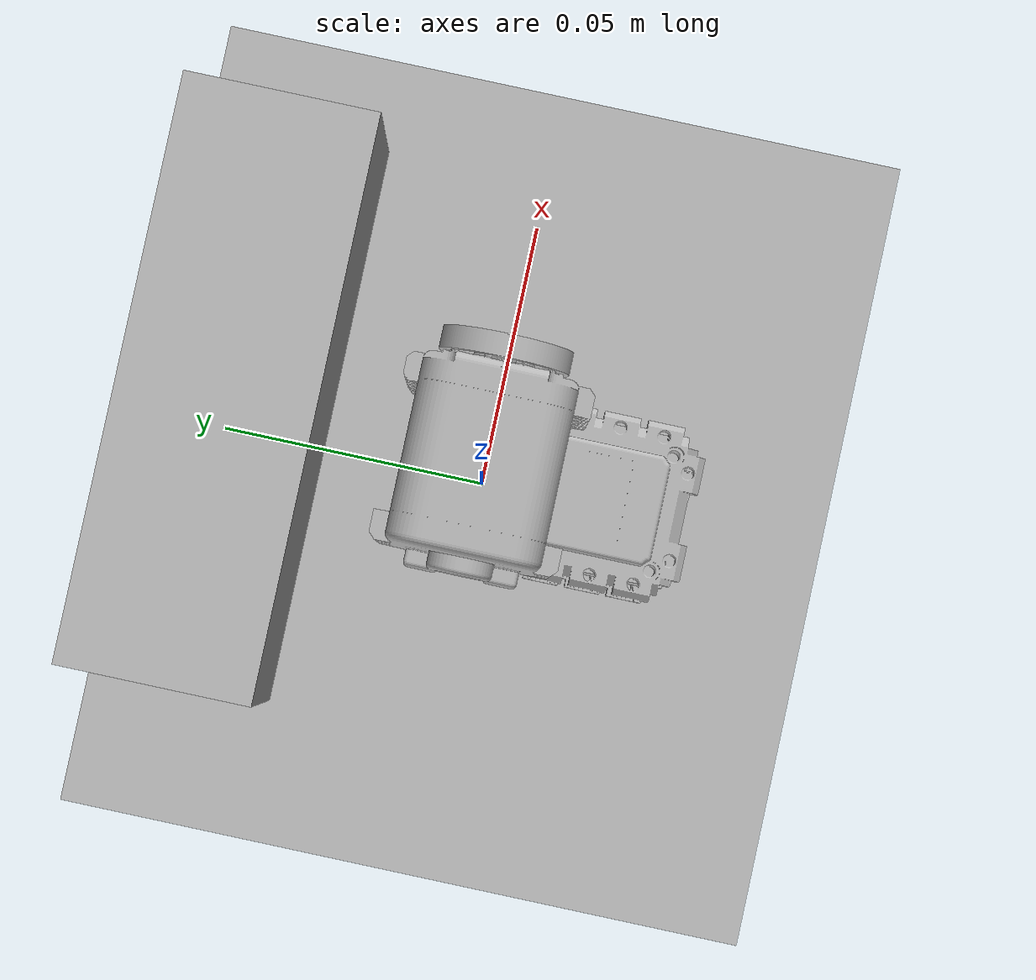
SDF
<sdf version='1.5'>
  <model name='holoruch_pantilt'>
    <link name='base_link'>
      <pose>0 0 0 0 -0 0</pose>
      <inertial>
        <pose>0 0 0.00745161 0 -0 0</pose>
        <mass>0.155</mass>
        <inertia>
          <ixx>2.00002</ixx>
          <ixy>0</ixy>
          <ixz>0</ixz>
          <iyy>2.00002</iyy>
          <iyz>0</iyz>
          <izz>2</izz>
        </inertia>
      </inertial>
      <collision name='base_link_collision'>
        <pose>0 0 0 0 -0 0</pose>
        <geometry>
          <box>
            <size>0.15 0.13 0.01</size>
          </box>
        </geometry>
      </collision>
      <collision name='base_link_collision_base_link_1'>
        <pose>0 0 0.021 0 -0 0</pose>
        <geometry>
          <mesh>
            <scale>1 1 1</scale>
            <uri>model://holoruch_pantilt_description/meshes/AX-12A_convex.stl</uri>
          </mesh>
        </geometry>
      </collision>
      <visual name='base_link_visual'>
        <pose>0 0 0 0 -0 0</pose>
        <geometry>
          <box>
            <size>0.15 0.13 0.01</size>
          </box>
        </geometry>
      </visual>
      <visual name='base_link_visual_base_link_1'>
        <pose>0 0 0.021 0 -0 0</pose>
        <geometry>
          <mesh>
            <scale>1 1 1</scale>
            <uri>model://holoruch_pantilt_description/meshes/AX-12A.stl</uri>
          </mesh>
        </geometry>
      </visual>
    </link>
    <link name='tilt_link'>
      <pose>0 0 0.081 0 -0 0</pose>
      <inertial>
        <pose>0 0 0 1.57079 -0 1.57079</pose>
        <mass>0.055</mass>
        <inertia>
          <ixx>1</ixx>
          <ixy>0</ixy>
          <ixz>0</ixz>
          <iyy>1</iyy>
          <iyz>0</iyz>
          <izz>1</izz>
        </inertia>
      </inertial>
      <collision name='tilt_link_collision'>
        <pose>0 0 0 1.57079 -0 1.57079</pose>
        <geometry>
          <mesh>
            <scale>1 1 1</scale>
            <uri>model://holoruch_pantilt_description/meshes/AX-12A_convex.stl</uri>
          </mesh>
        </geometry>
      </collision>
      <visual name='tilt_link_visual'>
        <pose>0 0 0 1.57079 -0 1.57079</pose>
        <geometry>
          <mesh>
            <scale>1 1 1</scale>
            <uri>model://holoruch_pantilt_description/meshes/AX-12A.stl</uri>
          </mesh>
        </geometry>
      </visual>
    </link>
    <joint name='pan_joint' type='revolute'>
      <child>tilt_link</child>
      <parent>base_link</parent>
      <axis>
        <xyz>0 0 1</xyz>
        <limit>
          <lower>-1.57079</lower>
          <upper>1.57079</upper>
          <effort>1</effort>
          <velocity>1</velocity>
        </limit>
        <dynamics>
          <spring_reference>0</spring_reference>
          <spring_stiffness>0</spring_stiffness>
        </dynamics>
        <use_parent_model_frame>1</use_parent_model_frame>
      </axis>
    </joint>
    <link name='camera_link'>
      <pose>0 0 0.116 0 -0 0</pose>
      <inertial>
        <pose>0 0.04 0 0 -0 0</pose>
        <mass>0.08</mass>
        <inertia>
          <ixx>1</ixx>
          <ixy>0</ixy>
          <ixz>0</ixz>
          <iyy>1</iyy>
          <iyz>0</iyz>
          <izz>1</izz>
        </inertia>
      </inertial>
      <collision name='camera_link_collision'>
        <pose>0 0.04 0 0 -0 0</pose>
        <geometry>
          <box>
            <size>0.09 0.03 0.04</size>
          </box>
        </geometry>
      </collision>
      <visual name='camera_link_visual'>
        <pose>0 0.04 0 0 -0 0</pose>
        <geometry>
          <box>
            <size>0.09 0.03 0.04</size>
          </box>
        </geometry>
      </visual>
      <sensor name="camera_sensor" type="camera">
        <always_on>1</always_on>
        <visualize>0</visualize>
        <pose>
          0 0 0.116
          3.14159 3.14159 -1.5708
        </pose>
        <update_rate>30</update_rate>
        <camera>
          <horizontal_fov>1.0</horizontal_fov>
          <image>
            <width>640</width>
            <height>480</height>
            <format>R8G8B8</format>
          </image>
          <clip>
            <near>0.0100000</near>
            <far>100.000000</far>
          </clip>
        </camera>
        <plugin name="camera_sensor_ros" filename="libgazebo_ros_camera.so">
          <alwaysOn>true</alwaysOn>
          <cameraName>/simcam</cameraName>
          <imageTopicName>image_raw</imageTopicName>
          <cameraInfoTopicName>camera_info</cameraInfoTopicName>
          <frameName>sim_cam</frameName>
        </plugin>
      </sensor>
    </link>
    <joint name='tilt_joint' type='revolute'>
      <child>camera_link</child>
      <parent>tilt_link</parent>
      <axis>
        <xyz>1 0 0</xyz>
        <limit>
          <lower>-0.3</lower>
          <upper>1.57079</upper>
          <effort>1</effort>
          <velocity>1</velocity>
        </limit>
        <dynamics>
          <spring_reference>0</spring_reference>
          <spring_stiffness>0</spring_stiffness>
        </dynamics>
        <use_parent_model_frame>1</use_parent_model_frame>
      </axis>
    </joint>
    <plugin name="joint_pos_control" filename="libRobotJointPositionControlPlugin.so">
      <robotNamespace>/pantilt</robotNamespace>
      <jointsReadTopic>get_joint_positions</jointsReadTopic>
      <jointsWriteTopic>set_joint_positions</jointsWriteTopic>
    </plugin>
  </model>
</sdf>
